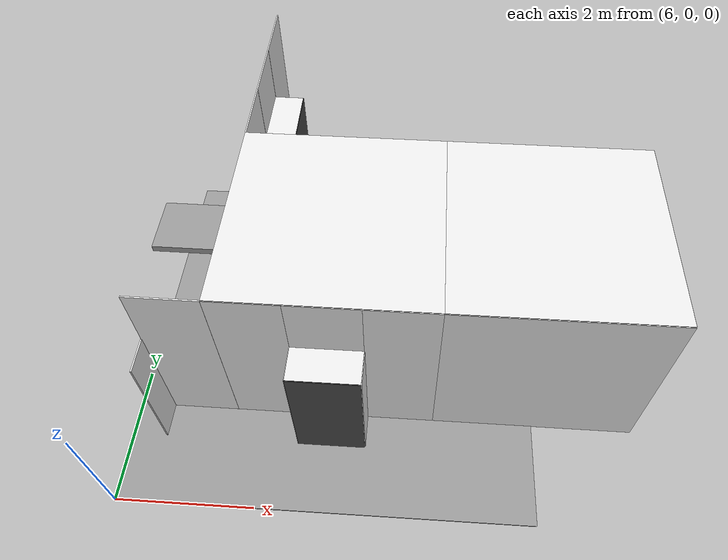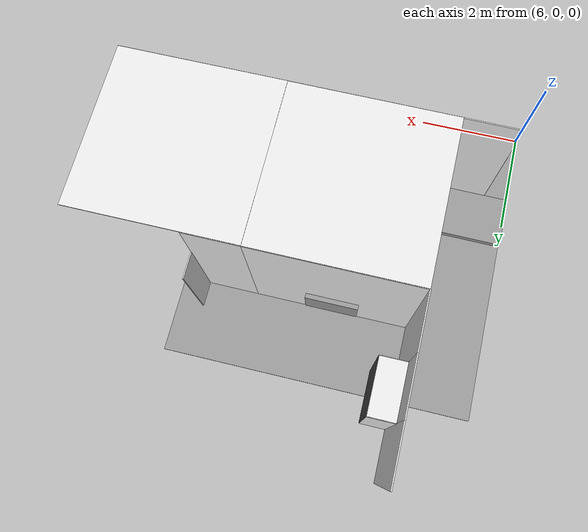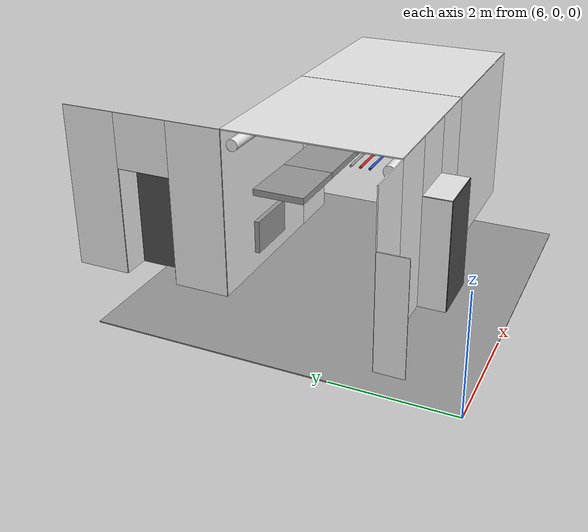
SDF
<sdf version="1.6">
 <world name="default">
  <model name="wall_front_front_left_2_2_0_2">
   <static>1</static>
   <pose>7.5 5.0 1.5 0.0 0.0 -1.57</pose>
   <link name="link">
    <collision name="collision"><geometry><box><size>1.0 0.02 3.0</size></box></geometry></collision>
    <visual name="visual">
     <material>
      <script><name>Gazebo/White</name><uri>file://media/materials/scripts/gazebo.material</uri></script>
     </material>
     <geometry><box><size>1.0 0.02 3.0</size></box></geometry>
    </visual>
   </link>
  </model>
  <model name="wall_front_front_right_2_2_0_2">
   <static>1</static>
   <pose>7.5 7.0 1.5 0.0 0.0 -1.57</pose>
   <link name="link">
    <collision name="collision"><geometry><box><size>1.0 0.02 3.0</size></box></geometry></collision>
    <visual name="visual">
     <material>
      <script><name>Gazebo/White</name><uri>file://media/materials/scripts/gazebo.material</uri></script>
     </material>
     <geometry><box><size>1.0 0.02 3.0</size></box></geometry>
    </visual>
   </link>
  </model>
  <model name="wall_front_front_up_2_2_0_2">
   <static>1</static>
   <pose>7.5 6.0 2.5 0.0 0.0 -1.57</pose>
   <link name="link">
    <collision name="collision"><geometry><box><size>1.0 0.02 1.0</size></box></geometry></collision>
    <visual name="visual">
     <material>
      <script><name>Gazebo/White</name><uri>file://media/materials/scripts/gazebo.material</uri></script>
     </material>
     <geometry><box><size>1.0 0.02 1.0</size></box></geometry>
    </visual>
   </link>
  </model>
  <model name="wall_front_inside_back_2_2_0_2">
   <static>1</static>
   <pose>8.0 6.0 1.0 0.0 0.0 -1.57</pose>
   <link name="link">
    <collision name="collision"><geometry><box><size>1 0.02 2</size></box></geometry></collision>
    <visual name="visual">
     <material>
      <script><name>Gazebo/DarkGrey</name><uri>file://media/materials/scripts/gazebo.material</uri></script>
     </material>
     <geometry><box><size>1 0.02 2</size></box></geometry>
    </visual>
   </link>
  </model>
  <model name="wall_front_inside_left_2_2_0_2">
   <static>1</static>
   <pose>7.75 6.5 1.0 0.0 0.0 0.0</pose>
   <link name="link">
    <collision name="collision"><geometry><box><size>0.5 0.02 2</size></box></geometry></collision>
    <visual name="visual">
     <material>
      <script><name>Gazebo/White</name><uri>file://media/materials/scripts/gazebo.material</uri></script>
     </material>
     <geometry><box><size>0.5 0.02 2</size></box></geometry>
    </visual>
   </link>
  </model>
  <model name="wall_front_inside_right_2_2_0_2">
   <static>1</static>
   <pose>7.75 5.5 1.0 0.0 0.0 0.0</pose>
   <link name="link">
    <collision name="collision"><geometry><box><size>0.5 0.02 2</size></box></geometry></collision>
    <visual name="visual">
     <material>
      <script><name>Gazebo/White</name><uri>file://media/materials/scripts/gazebo.material</uri></script>
     </material>
     <geometry><box><size>0.5 0.02 2</size></box></geometry>
    </visual>
   </link>
  </model>
  <model name="wall_front_inside_top_2_2_0_2">
   <static>1</static>
   <pose>7.75 6.0 2.0 1.57 0.0 -1.57</pose>
   <link name="link">
    <collision name="collision"><geometry><box><size>1 0.02 0.5</size></box></geometry></collision>
    <visual name="visual">
     <material>
      <script><name>Gazebo/White</name><uri>file://media/materials/scripts/gazebo.material</uri></script>
     </material>
     <geometry><box><size>1 0.02 0.5</size></box></geometry>
    </visual>
   </link>
  </model>
  <model name="ceiling_1_2_1_1_3">
   <pose>7.0 3.0 2.55 0.0 0.0 4.71</pose>
   <link name="link_1">
    <visual name="visual">
     <geometry><box><size>0.8 1 0.1</size></box></geometry>
     <material>
      <script><uri>file://media/materials/scripts/gazebo.material</uri><name>Gazebo/Grey</name></script>
     </material>
    </visual>
    <collision name="collision"><geometry><box><size>0.8 1 0.1</size></box></geometry></collision>
   </link>
   <static>1</static>
  </model>
  <model name="wall_front_front_right_2_1_0_3">
   <static>1</static>
   <pose>7.0 1.5 1.5 0.0 0.0 3.14</pose>
   <link name="link">
    <collision name="collision"><geometry><box><size>1.0 0.02 3.0</size></box></geometry></collision>
    <visual name="visual">
     <material>
      <script><name>Gazebo/White</name><uri>file://media/materials/scripts/gazebo.material</uri></script>
     </material>
     <geometry><box><size>1.0 0.02 3.0</size></box></geometry>
    </visual>
   </link>
  </model>
  <model name="wall_front_inside_left_2_1_0_3">
   <static>1</static>
   <pose>6.5 1.25 1.0 0.0 0.0 4.71</pose>
   <link name="link">
    <collision name="collision"><geometry><box><size>0.5 0.02 2</size></box></geometry></collision>
    <visual name="visual">
     <material>
      <script><name>Gazebo/White</name><uri>file://media/materials/scripts/gazebo.material</uri></script>
     </material>
     <geometry><box><size>0.5 0.02 2</size></box></geometry>
    </visual>
   </link>
  </model>
  <model name="wall_left_3_1_0_1">
   <static>1</static>
   <pose>9.0 4.5 1.5 0.0 0.0 0.0</pose>
   <link name="link">
    <collision name="collision"><geometry><box><size>3.0 0.02 3.0</size></box></geometry></collision>
    <visual name="visual">
     <material>
      <script><name>Gazebo/White</name><uri>file://media/materials/scripts/gazebo.material</uri></script>
     </material>
     <geometry><box><size>3.0 0.02 3.0</size></box></geometry>
    </visual>
   </link>
  </model>
  <model name="wall_top_3_1_0_1">
   <static>1</static>
   <pose>9.0 3.0 3.0 1.57 0.0 -1.57</pose>
   <link name="link">
    <collision name="collision"><geometry><box><size>3.0 0.02 3.0</size></box></geometry></collision>
    <visual name="visual">
     <material>
      <script><name>Gazebo/White</name><uri>file://media/materials/scripts/gazebo.material</uri></script>
     </material>
     <geometry><box><size>3.0 0.02 3.0</size></box></geometry>
    </visual>
   </link>
  </model>
  <model name="ceiling_1_3_1_0_1">
   <pose>9.0 3.0 2.55 0.0 0.0 -1.57</pose>
   <link name="link_1">
    <visual name="visual">
     <geometry><box><size>0.8 1 0.1</size></box></geometry>
     <material>
      <script><uri>file://media/materials/scripts/gazebo.material</uri><name>Gazebo/Grey</name></script>
     </material>
    </visual>
    <collision name="collision"><geometry><box><size>0.8 1 0.1</size></box></geometry></collision>
   </link>
   <static>1</static>
  </model>
  <model name="ceiling_1_3_1_1_1">
   <pose>8.0 3.0 2.55 0.0 0.0 -1.57</pose>
   <link name="link_1">
    <visual name="visual">
     <geometry><box><size>0.8 1 0.1</size></box></geometry>
     <material>
      <script><uri>file://media/materials/scripts/gazebo.material</uri><name>Gazebo/Grey</name></script>
     </material>
    </visual>
    <collision name="collision"><geometry><box><size>0.8 1 0.1</size></box></geometry></collision>
   </link>
   <static>1</static>
  </model>
  <model name="ceiling_1_3_1_2_1">
   <pose>10.0 3.0 2.55 0.0 0.0 -1.57</pose>
   <link name="link_1">
    <visual name="visual">
     <geometry><box><size>0.8 1 0.1</size></box></geometry>
     <material>
      <script><uri>file://media/materials/scripts/gazebo.material</uri><name>Gazebo/Grey</name></script>
     </material>
    </visual>
    <collision name="collision"><geometry><box><size>0.8 1 0.1</size></box></geometry></collision>
   </link>
   <static>1</static>
  </model>
  <model name="white_pipe_left_3_1_0_1">
   <static>1</static>
   <pose>9.0 3.0 2.76 0.0 0.0 -1.57</pose>
   <link name="link_0">
    <visual name="visual">
     <pose>-1.3 0 0 1.57 0 0</pose>
     <geometry><cylinder><radius>0.1</radius><length>3.0</length></cylinder></geometry>
     <material>
      <script><uri>file://media/materials/scripts/gazebo.material</uri><name>Gazebo/White</name></script>
     </material>
    </visual>
    <collision name="collision">
     <pose>-1.3 0 0 1.57 0 0</pose>
     <geometry><cylinder><radius>0.1</radius><length>3.0</length></cylinder></geometry>
    </collision>
   </link>
  </model>
  <model name="white_pipe_right_3_1_0_1">
   <static>1</static>
   <pose>9.0 3.0 2.76 0.0 0.0 -1.57</pose>
   <link name="link_0">
    <visual name="visual">
     <pose>1.3 0 0 1.57 0 0</pose>
     <geometry><cylinder><radius>0.1</radius><length>3.0</length></cylinder></geometry>
     <material>
      <script><uri>file://media/materials/scripts/gazebo.material</uri><name>Gazebo/White</name></script>
     </material>
    </visual>
    <collision name="collision">
     <pose>1.3 0 0 1.57 0 0</pose>
     <geometry><cylinder><radius>0.1</radius><length>3.0</length></cylinder></geometry>
    </collision>
   </link>
  </model>
  <model name="black_pipe_right_3_1_0_1">
   <static>1</static>
   <pose>9.0 3.0 2.76 0.0 0.0 -1.57</pose>
   <link name="link_0">
    <visual name="visual">
     <pose>1.3 0 -0.25 1.57 0 0</pose>
     <geometry><cylinder><radius>0.1</radius><length>3.0</length></cylinder></geometry>
     <material>
      <script><uri>file://media/materials/scripts/gazebo.material</uri><name>Gazebo/Black</name></script>
     </material>
    </visual>
    <collision name="collision">
     <pose>1.3 0 -0.25 1.57 0 0</pose>
     <geometry><cylinder><radius>0.1</radius><length>3.0</length></cylinder></geometry>
    </collision>
   </link>
  </model>
  <model name="grey_pipe_right_3_1_0_1">
   <static>1</static>
   <pose>9.0 3.0 2.76 0.0 0.0 -1.57</pose>
   <link name="link_0">
    <visual name="visual">
     <pose>0.7 0 0 1.57 0 0</pose>
     <geometry><cylinder><radius>0.02</radius><length>3.0</length></cylinder></geometry>
     <material>
      <script><uri>file://media/materials/scripts/gazebo.material</uri><name>Gazebo/Grey</name></script>
     </material>
    </visual>
    <collision name="collision">
     <pose>0.7 0 0 1.57 0 0</pose>
     <geometry><cylinder><radius>0.02</radius><length>3.0</length></cylinder></geometry>
    </collision>
   </link>
  </model>
  <model name="red_pipe_right_3_1_0_1">
   <static>1</static>
   <pose>9.0 3.0 2.76 0.0 0.0 -1.57</pose>
   <link name="link_0">
    <visual name="visual">
     <pose>0.85 0 0 1.57 0 0</pose>
     <geometry><cylinder><radius>0.02</radius><length>3.0</length></cylinder></geometry>
     <material>
      <script><uri>file://media/materials/scripts/gazebo.material</uri><name>Gazebo/Red</name></script>
     </material>
    </visual>
    <collision name="collision">
     <pose>0.85 0 0 1.57 0 0</pose>
     <geometry><cylinder><radius>0.02</radius><length>3.0</length></cylinder></geometry>
    </collision>
   </link>
  </model>
  <model name="blue_pipe_right_3_1_0_1">
   <static>1</static>
   <pose>9.0 3.0 2.76 0.0 0.0 -1.57</pose>
   <link name="link_0">
    <visual name="visual">
     <pose>1 0 0 1.57 0 0</pose>
     <geometry><cylinder><radius>0.02</radius><length>3.0</length></cylinder></geometry>
     <material>
      <script><uri>file://media/materials/scripts/gazebo.material</uri><name>Gazebo/Blue</name></script>
     </material>
    </visual>
    <collision name="collision">
     <pose>1 0 0 1.57 0 0</pose>
     <geometry><cylinder><radius>0.02</radius><length>3.0</length></cylinder></geometry>
    </collision>
   </link>
  </model>
  <model name="wall_bottom_3_1_0_1">
   <static>1</static>
   <pose>9.0 3.0 0.0 0.0 0.0 -1.57</pose>
   <link name="link">
    <collision name="collision"><geometry><box><size>6.0 6.0 0.02</size></box></geometry></collision>
    <visual name="visual">
     <material>
      <script><name>Gazebo/Grey</name><uri>file://media/materials/scripts/gazebo.material</uri></script>
     </material>
     <geometry><box><size>6.0 6.0 0.02</size></box></geometry>
    </visual>
   </link>
  </model>
  <model name="wall_right_front_left_3_1_0_1">
   <static>1</static>
   <pose>10.0 1.5 1.5 0.0 0.0 0.0</pose>
   <link name="link">
    <collision name="collision"><geometry><box><size>1.0 0.02 3.0</size></box></geometry></collision>
    <visual name="visual">
     <material>
      <script><name>Gazebo/White</name><uri>file://media/materials/scripts/gazebo.material</uri></script>
     </material>
     <geometry><box><size>1.0 0.02 3.0</size></box></geometry>
    </visual>
   </link>
  </model>
  <model name="wall_right_front_right_3_1_0_1">
   <static>1</static>
   <pose>8.0 1.5 1.5 0.0 0.0 0.0</pose>
   <link name="link">
    <collision name="collision"><geometry><box><size>1.0 0.02 3.0</size></box></geometry></collision>
    <visual name="visual">
     <material>
      <script><name>Gazebo/White</name><uri>file://media/materials/scripts/gazebo.material</uri></script>
     </material>
     <geometry><box><size>1.0 0.02 3.0</size></box></geometry>
    </visual>
   </link>
  </model>
  <model name="wall_right_front_up_3_1_0_1">
   <static>1</static>
   <pose>9.0 1.5 2.5 0.0 0.0 0.0</pose>
   <link name="link">
    <collision name="collision"><geometry><box><size>1.0 0.02 1.0</size></box></geometry></collision>
    <visual name="visual">
     <material>
      <script><name>Gazebo/White</name><uri>file://media/materials/scripts/gazebo.material</uri></script>
     </material>
     <geometry><box><size>1.0 0.02 1.0</size></box></geometry>
    </visual>
   </link>
  </model>
  <model name="wall_right_inside_back_3_1_0_1">
   <static>1</static>
   <pose>9.0 1.0 1.0 0.0 0.0 0.0</pose>
   <link name="link">
    <collision name="collision"><geometry><box><size>1 0.02 2</size></box></geometry></collision>
    <visual name="visual">
     <material>
      <script><name>Gazebo/DarkGrey</name><uri>file://media/materials/scripts/gazebo.material</uri></script>
     </material>
     <geometry><box><size>1 0.02 2</size></box></geometry>
    </visual>
   </link>
  </model>
  <model name="wall_right_inside_left_3_1_0_1">
   <static>1</static>
   <pose>9.5 1.25 1.0 0.0 0.0 -1.57</pose>
   <link name="link">
    <collision name="collision"><geometry><box><size>0.5 0.02 2</size></box></geometry></collision>
    <visual name="visual">
     <material>
      <script><name>Gazebo/White</name><uri>file://media/materials/scripts/gazebo.material</uri></script>
     </material>
     <geometry><box><size>0.5 0.02 2</size></box></geometry>
    </visual>
   </link>
  </model>
  <model name="wall_right_inside_right_3_1_0_1">
   <static>1</static>
   <pose>8.5 1.25 1.0 0.0 0.0 -1.57</pose>
   <link name="link">
    <collision name="collision"><geometry><box><size>0.5 0.02 2</size></box></geometry></collision>
    <visual name="visual">
     <material>
      <script><name>Gazebo/White</name><uri>file://media/materials/scripts/gazebo.material</uri></script>
     </material>
     <geometry><box><size>0.5 0.02 2</size></box></geometry>
    </visual>
   </link>
  </model>
  <model name="wall_right_inside_top_3_1_0_1">
   <static>1</static>
   <pose>9.0 1.25 2.0 1.57 0.0 0.0</pose>
   <link name="link">
    <collision name="collision"><geometry><box><size>1 0.02 0.5</size></box></geometry></collision>
    <visual name="visual">
     <material>
      <script><name>Gazebo/White</name><uri>file://media/materials/scripts/gazebo.material</uri></script>
     </material>
     <geometry><box><size>1 0.02 0.5</size></box></geometry>
    </visual>
   </link>
  </model>
  <model name="panel_3_1_0_1">
   <static>1</static>
   <pose>9.0 4.5 0.66 0.0 0.0 -1.57</pose>
   <link name="link">
    <collision name="collision"><geometry><box><size>0.2 1 0.6</size></box></geometry></collision>
    <visual name="visual">
     <material>
      <script><name>Gazebo/Grey</name><uri>file://media/materials/scripts/gazebo.material</uri></script>
     </material>
     <geometry><box><size>0.2 1 0.6</size></box></geometry>
    </visual>
   </link>
  </model>
  <model name="wall_right_4_1_0_1">
   <static>1</static>
   <pose>12.0 1.5 1.5 0.0 0.0 0.0</pose>
   <link name="link">
    <collision name="collision"><geometry><box><size>3.0 0.02 3.0</size></box></geometry></collision>
    <visual name="visual">
     <material>
      <script><name>Gazebo/White</name><uri>file://media/materials/scripts/gazebo.material</uri></script>
     </material>
     <geometry><box><size>3.0 0.02 3.0</size></box></geometry>
    </visual>
   </link>
  </model>
  <model name="wall_top_4_1_0_1">
   <static>1</static>
   <pose>12.0 3.0 3.0 1.57 0.0 -1.57</pose>
   <link name="link">
    <collision name="collision"><geometry><box><size>3.0 0.02 3.0</size></box></geometry></collision>
    <visual name="visual">
     <material>
      <script><name>Gazebo/White</name><uri>file://media/materials/scripts/gazebo.material</uri></script>
     </material>
     <geometry><box><size>3.0 0.02 3.0</size></box></geometry>
    </visual>
   </link>
  </model>
  <model name="ceiling_1_4_1_0_1">
   <pose>12.0 3.0 2.55 0.0 0.0 -1.57</pose>
   <link name="link_1">
    <visual name="visual">
     <geometry><box><size>0.8 1 0.1</size></box></geometry>
     <material>
      <script><uri>file://media/materials/scripts/gazebo.material</uri><name>Gazebo/Grey</name></script>
     </material>
    </visual>
    <collision name="collision"><geometry><box><size>0.8 1 0.1</size></box></geometry></collision>
   </link>
   <static>1</static>
  </model>
  <model name="ceiling_1_4_1_1_1">
   <pose>11.0 3.0 2.55 0.0 0.0 -1.57</pose>
   <link name="link_1">
    <visual name="visual">
     <geometry><box><size>0.8 1 0.1</size></box></geometry>
     <material>
      <script><uri>file://media/materials/scripts/gazebo.material</uri><name>Gazebo/Grey</name></script>
     </material>
    </visual>
    <collision name="collision"><geometry><box><size>0.8 1 0.1</size></box></geometry></collision>
   </link>
   <static>1</static>
  </model>
  <model name="white_pipe_left_4_1_0_1">
   <static>1</static>
   <pose>12.0 3.0 2.76 0.0 0.0 -1.57</pose>
   <link name="link_0">
    <visual name="visual">
     <pose>-1.3 0 0 1.57 0 0</pose>
     <geometry><cylinder><radius>0.1</radius><length>3.0</length></cylinder></geometry>
     <material>
      <script><uri>file://media/materials/scripts/gazebo.material</uri><name>Gazebo/White</name></script>
     </material>
    </visual>
    <collision name="collision">
     <pose>-1.3 0 0 1.57 0 0</pose>
     <geometry><cylinder><radius>0.1</radius><length>3.0</length></cylinder></geometry>
    </collision>
   </link>
  </model>
  <model name="white_pipe_right_4_1_0_1">
   <static>1</static>
   <pose>12.0 3.0 2.76 0.0 0.0 -1.57</pose>
   <link name="link_0">
    <visual name="visual">
     <pose>1.3 0 0 1.57 0 0</pose>
     <geometry><cylinder><radius>0.1</radius><length>3.0</length></cylinder></geometry>
     <material>
      <script><uri>file://media/materials/scripts/gazebo.material</uri><name>Gazebo/White</name></script>
     </material>
    </visual>
    <collision name="collision">
     <pose>1.3 0 0 1.57 0 0</pose>
     <geometry><cylinder><radius>0.1</radius><length>3.0</length></cylinder></geometry>
    </collision>
   </link>
  </model>
  <model name="black_pipe_right_4_1_0_1">
   <static>1</static>
   <pose>12.0 3.0 2.76 0.0 0.0 -1.57</pose>
   <link name="link_0">
    <visual name="visual">
     <pose>1.3 0 -0.25 1.57 0 0</pose>
     <geometry><cylinder><radius>0.1</radius><length>3.0</length></cylinder></geometry>
     <material>
      <script><uri>file://media/materials/scripts/gazebo.material</uri><name>Gazebo/Black</name></script>
     </material>
    </visual>
    <collision name="collision">
     <pose>1.3 0 -0.25 1.57 0 0</pose>
     <geometry><cylinder><radius>0.1</radius><length>3.0</length></cylinder></geometry>
    </collision>
   </link>
  </model>
  <model name="grey_pipe_right_4_1_0_1">
   <static>1</static>
   <pose>12.0 3.0 2.76 0.0 0.0 -1.57</pose>
   <link name="link_0">
    <visual name="visual">
     <pose>0.7 0 0 1.57 0 0</pose>
     <geometry><cylinder><radius>0.02</radius><length>3.0</length></cylinder></geometry>
     <material>
      <script><uri>file://media/materials/scripts/gazebo.material</uri><name>Gazebo/Grey</name></script>
     </material>
    </visual>
    <collision name="collision">
     <pose>0.7 0 0 1.57 0 0</pose>
     <geometry><cylinder><radius>0.02</radius><length>3.0</length></cylinder></geometry>
    </collision>
   </link>
  </model>
  <model name="red_pipe_right_4_1_0_1">
   <static>1</static>
   <pose>12.0 3.0 2.76 0.0 0.0 -1.57</pose>
   <link name="link_0">
    <visual name="visual">
     <pose>0.85 0 0 1.57 0 0</pose>
     <geometry><cylinder><radius>0.02</radius><length>3.0</length></cylinder></geometry>
     <material>
      <script><uri>file://media/materials/scripts/gazebo.material</uri><name>Gazebo/Red</name></script>
     </material>
    </visual>
    <collision name="collision">
     <pose>0.85 0 0 1.57 0 0</pose>
     <geometry><cylinder><radius>0.02</radius><length>3.0</length></cylinder></geometry>
    </collision>
   </link>
  </model>
  <model name="wall_left_front_right_4_1_0_1">
   <static>1</static>
   <pose>11.0 4.5 1.5 0.0 0.0 0.0</pose>
   <link name="link">
    <collision name="collision"><geometry><box><size>1.0 0.02 3.0</size></box></geometry></collision>
    <visual name="visual">
     <material>
      <script><name>Gazebo/White</name><uri>file://media/materials/scripts/gazebo.material</uri></script>
     </material>
     <geometry><box><size>1.0 0.02 3.0</size></box></geometry>
    </visual>
   </link>
  </model>
  <model name="wall_left_inside_right_4_1_0_1">
   <static>1</static>
   <pose>11.5 4.75 1.0 0.0 0.0 -1.57</pose>
   <link name="link">
    <collision name="collision"><geometry><box><size>0.5 0.02 2</size></box></geometry></collision>
    <visual name="visual">
     <material>
      <script><name>Gazebo/White</name><uri>file://media/materials/scripts/gazebo.material</uri></script>
     </material>
     <geometry><box><size>0.5 0.02 2</size></box></geometry>
    </visual>
   </link>
  </model>
 </world>
</sdf>
